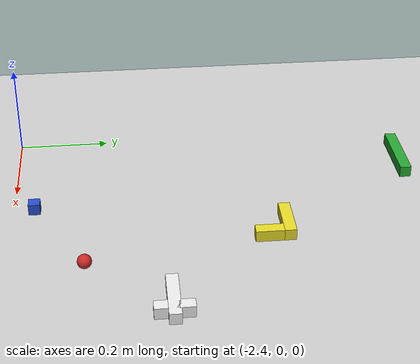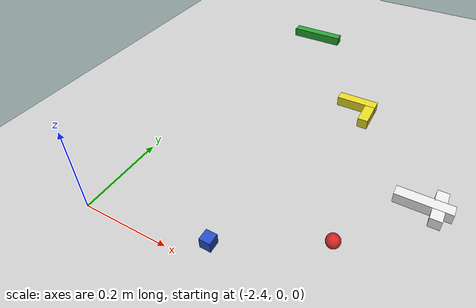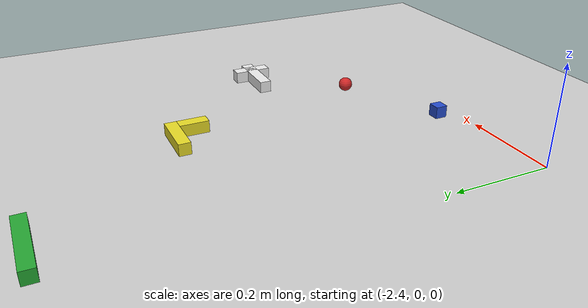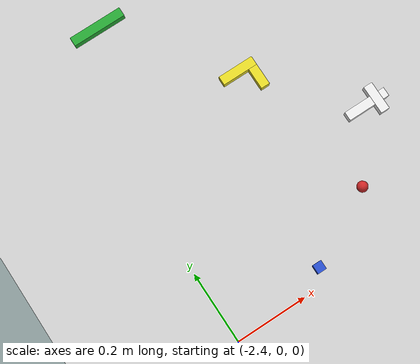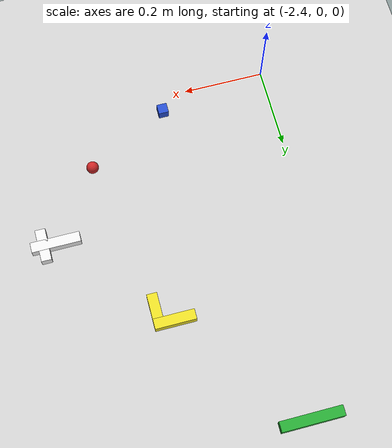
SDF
<sdf version="1.6">
 <world name="default">
  <model name="ground_plane">
   <pose>0 1 0 0 -0 0</pose>
   <static>1</static>
   <link name="link">
    <collision name="collision">
     <geometry><plane><normal>0 0 1</normal><size>100 100</size></plane></geometry>
     <surface>
      <contact><collide_bitmask>65535</collide_bitmask></contact>
      <friction><ode><mu>100</mu><mu2>50</mu2></ode></friction>
     </surface>
    </collision>
    <visual name="visual">
     <cast_shadows>0</cast_shadows>
     <geometry><plane><normal>0 0 1</normal><size>100 100</size></plane></geometry>
     <material>
      <script><uri>file://media/materials/scripts/gazebo.material</uri><name>Gazebo/Grey</name></script>
     </material>
    </visual>
   </link>
  </model>
  <model name="L_shape">
   <link name="link">
    <inertial>
     <mass>0.15</mass>
     <inertia><ixx>0.0002</ixx><ixy>0</ixy><ixz>0</ixz><iyy>0.0002</iyy><iyz>0</iyz><izz>0.0004</izz></inertia>
    </inertial>
    <visual name="long_vis">
     <pose>0 0.03 0 0 -0 0</pose>
     <geometry><box><size>0.1 0.025 0.025</size></box></geometry>
     <material><script><name>Gazebo/Yellow</name><uri>__default__</uri></script></material>
    </visual>
    <collision name="long_col">
     <pose>0 0.03 0 0 -0 0</pose>
     <geometry><box><size>0.1 0.025 0.025</size></box></geometry>
     <surface><friction><ode><mu>100</mu><mu2>100</mu2></ode></friction></surface>
    </collision>
    <visual name="short_vis">
     <pose>0.0375 -0.0125 0 0 -0 0</pose>
     <geometry><box><size>0.025 0.06 0.025</size></box></geometry>
     <material><script><name>Gazebo/Yellow</name><uri>__default__</uri></script></material>
    </visual>
    <collision name="short_col">
     <pose>0.0375 -0.0125 0 0 -0 0</pose>
     <geometry><box><size>0.025 0.06 0.025</size></box></geometry>
     <surface><friction><ode><mu>100</mu><mu2>100</mu2></ode></friction></surface>
    </collision>
   </link>
   <pose>-2.02356 0.544341 0.0125 0 -0 2e-06</pose>
  </model>
  <model name="bar">
   <link name="link">
    <inertial>
     <mass>0.1</mass>
     <inertia><ixx>1e-05</ixx><ixy>0</ixy><ixz>0</ixz><iyy>0.0002</iyy><iyz>0</iyz><izz>0.0002</izz></inertia>
    </inertial>
    <visual name="visual">
     <geometry><box><size>0.15 0.025 0.025</size></box></geometry>
     <material><script><name>Gazebo/Green</name><uri>__default__</uri></script></material>
    </visual>
    <collision name="collision">
     <geometry><box><size>0.15 0.025 0.025</size></box></geometry>
     <surface>
      <friction><ode><mu>100</mu><mu2>100</mu2></ode></friction>
      <contact><ode><kp>100000</kp><kd>1</kd><min_depth>0.001</min_depth></ode></contact>
     </surface>
    </collision>
   </link>
   <pose>-2.26375 0.872292 0.011498 0 -0 0</pose>
  </model>
  <model name="cross">
   <link name="link">
    <inertial>
     <mass>0.15</mass>
     <inertia><ixx>0.0002</ixx><ixy>0</ixy><ixz>0</ixz><iyy>0.0002</iyy><iyz>0</iyz><izz>0.0004</izz></inertia>
    </inertial>
    <visual name="stem_vis">
     <geometry><box><size>0.12 0.025 0.025</size></box></geometry>
     <material><script><name>Gazebo/White</name><uri>__default__</uri></script></material>
    </visual>
    <collision name="stem_col">
     <geometry><box><size>0.12 0.025 0.025</size></box></geometry>
     <surface>
      <friction><ode><mu>100</mu><mu2>100</mu2></ode></friction>
      <contact><ode><kp>100000</kp><kd>1</kd><min_depth>0.001</min_depth></ode></contact>
     </surface>
    </collision>
    <visual name="crossbar_vis">
     <pose>0.03 0 0 0 -0 0</pose>
     <geometry><box><size>0.025 0.08 0.025</size></box></geometry>
     <material><script><name>Gazebo/White</name><uri>__default__</uri></script></material>
    </visual>
    <collision name="crossbar_col">
     <pose>0.03 0 0 0 -0 0</pose>
     <geometry><box><size>0.025 0.08 0.025</size></box></geometry>
     <surface>
      <friction><ode><mu>100</mu><mu2>100</mu2></ode></friction>
      <contact><ode><kp>100000</kp><kd>1</kd><min_depth>0.001</min_depth></ode></contact>
     </surface>
    </collision>
   </link>
   <pose>-1.79548 0.320284 0.011498 0 -1.3e-05 1e-06</pose>
  </model>
  <model name="cube">
   <link name="link">
    <inertial>
     <mass>0.1</mass>
     <inertia><ixx>0.0001</ixx><ixy>0</ixy><ixz>0</ixz><iyy>0.0001</iyy><iyz>0</iyz><izz>0.0001</izz></inertia>
    </inertial>
    <visual name="visual">
     <geometry><box><size>0.025 0.025 0.025</size></box></geometry>
     <material><script><name>Gazebo/Blue</name><uri>__default__</uri></script></material>
    </visual>
    <collision name="collision">
     <geometry><box><size>0.025 0.025 0.025</size></box></geometry>
     <surface>
      <friction><ode><mu>100</mu><mu2>100</mu2></ode></friction>
      <contact><ode><kp>100000</kp><kd>1</kd><min_depth>0.001</min_depth></ode></contact>
     </surface>
    </collision>
   </link>
   <pose>-2.12961 0.042749 0.011498 -0 -0 -0</pose>
  </model>
  <model name="sphere">
   <link name="link">
    <inertial>
     <mass>0.1</mass>
     <inertia><ixx>2e-05</ixx><ixy>0</ixy><ixz>0</ixz><iyy>2e-05</iyy><iyz>0</iyz><izz>2e-05</izz></inertia>
    </inertial>
    <visual name="visual">
     <geometry><sphere><radius>0.015</radius></sphere></geometry>
     <material><script><name>Gazebo/Red</name><uri>__default__</uri></script></material>
    </visual>
    <collision name="collision">
     <geometry><sphere><radius>0.015</radius></sphere></geometry>
     <surface>
      <friction><ode><mu>100</mu><mu2>100</mu2></ode></friction>
      <contact><ode><kp>100000</kp><kd>1</kd><min_depth>0.001</min_depth></ode></contact>
     </surface>
    </collision>
   </link>
   <pose>-1.92403 0.151032 0.01399 0 -0 0</pose>
  </model>
 </world>
</sdf>
